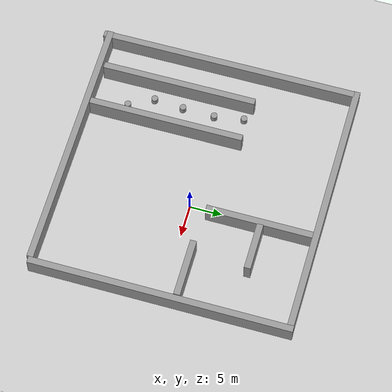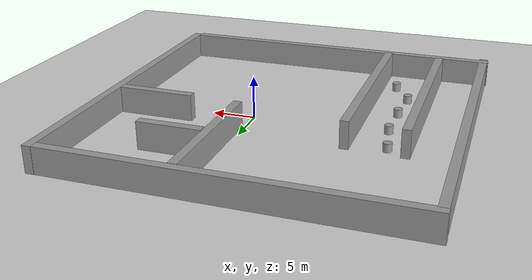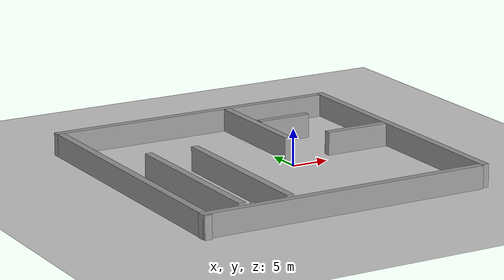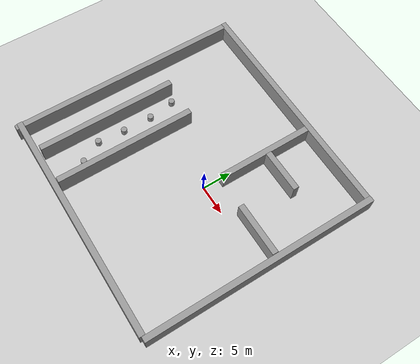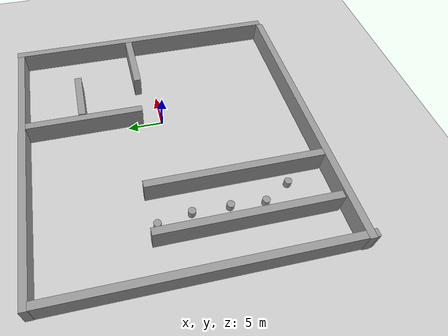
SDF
<sdf version="1.7">
 <world name="default">
  <light name="sun" type="directional">
   <pose>0 0 10 0 -0 0</pose>
   <diffuse>0.8 0.8 0.8 1</diffuse>
   <specular>0.2 0.2 0.2 1</specular>
   <attenuation>
    <range>1000</range>
    <constant>0.9</constant>
    <linear>0.01</linear>
    <quadratic>0.001</quadratic>
   </attenuation>
   <direction>-0.5 0.1 -0.9</direction>
   <spot><inner_angle>0</inner_angle><outer_angle>0</outer_angle><falloff>0</falloff></spot>
  </light>
  <model name="ground_plane">
   <static>1</static>
   <link name="link">
    <collision name="collision">
     <geometry><plane><normal>0 0 1</normal><size>100 100</size></plane></geometry>
     <surface>
      <contact><collide_bitmask>65535</collide_bitmask></contact>
      <friction><ode><mu>100</mu><mu2>50</mu2></ode></friction>
     </surface>
    </collision>
    <visual name="visual">
     <cast_shadows>0</cast_shadows>
     <geometry><plane><normal>0 0 1</normal><size>100 100</size></plane></geometry>
     <material>
      <script><uri>file://media/materials/scripts/gazebo.material</uri><name>Gazebo/Grey</name></script>
     </material>
    </visual>
   </link>
  </model>
  <gravity>0 0 -9.8</gravity>
  <magnetic_field>6e-06 2.3e-05 -4.2e-05</magnetic_field>
  <atmosphere type="adiabatic"/>
  <physics type="ode">
   <max_step_size>0.001</max_step_size>
   <real_time_factor>1</real_time_factor>
   <real_time_update_rate>1000</real_time_update_rate>
  </physics>
  <scene><ambient>0.4 0.4 0.4 1</ambient><background>0.7 0.7 0.7 1</background><shadows>1</shadows></scene>
  <audio><device>default</device></audio>
  <spherical_coordinates>
   <surface_model>EARTH_WGS84</surface_model>
   <latitude_deg>0</latitude_deg>
   <longitude_deg>0</longitude_deg>
   <elevation>0</elevation>
   <heading_deg>0</heading_deg>
  </spherical_coordinates>
  <model name="unit_box">
   <link name="link">
    <inertial>
     <mass>100</mass>
     <inertia><ixx>150</ixx><ixy>0</ixy><ixz>0</ixz><iyy>246</iyy><iyz>0</iyz><izz>14341.5</izz></inertia>
    </inertial>
    <visual name="visual">
     <geometry><box><size>1 40 5</size></box></geometry>
     <material>
      <script><name>Gazebo/Grey</name><uri>file://media/materials/scripts/gazebo.material</uri></script>
      <shader type="pixel"><normal_map>__default__</normal_map></shader>
      <ambient>0.3 0.3 0.3 1</ambient>
      <diffuse>0.7 0.7 0.7 1</diffuse>
      <specular>0.01 0.01 0.01 1</specular>
      <emissive>0 0 0 1</emissive>
     </material>
    </visual>
    <collision name="collision">
     <geometry><box><size>1 40 5</size></box></geometry>
     <surface>
      <friction>
       <ode><mu>1</mu><mu2>1</mu2><fdir1>0 0 0</fdir1><slip1>0</slip1><slip2>0</slip2></ode>
       <torsional>
        <coefficient>1</coefficient>
        <patch_radius>0</patch_radius>
        <surface_radius>0</surface_radius>
        <use_patch_radius>1</use_patch_radius>
        <ode><slip>0</slip></ode>
       </torsional>
      </friction>
      <bounce><restitution_coefficient>0</restitution_coefficient><threshold>1e+06</threshold></bounce>
      <contact>
       <collide_without_contact>0</collide_without_contact>
       <collide_without_contact_bitmask>1</collide_without_contact_bitmask>
       <collide_bitmask>1</collide_bitmask>
       <ode>
        <soft_cfm>0</soft_cfm>
        <soft_erp>0.2</soft_erp>
        <kp>1e+13</kp>
        <kd>1</kd>
        <max_vel>0.01</max_vel>
        <min_depth>0</min_depth>
       </ode>
       <bullet>
        <split_impulse>1</split_impulse>
        <split_impulse_penetration_threshold>-0.01</split_impulse_penetration_threshold>
        <soft_cfm>0</soft_cfm>
        <soft_erp>0.2</soft_erp>
        <kp>1e+13</kp>
        <kd>1</kd>
       </bullet>
      </contact>
     </surface>
    </collision>
   </link>
   <static>1</static>
   <pose>16.0416 0 0.499995 1e-05 -0 0</pose>
  </model>
  <model name="unit_box_clone">
   <link name="link">
    <inertial>
     <mass>100</mass>
     <inertia><ixx>150</ixx><ixy>0</ixy><ixz>0</ixz><iyy>246</iyy><iyz>0</iyz><izz>14341.5</izz></inertia>
    </inertial>
    <visual name="visual">
     <geometry><box><size>1 40 5</size></box></geometry>
     <material>
      <script><name>Gazebo/Grey</name><uri>file://media/materials/scripts/gazebo.material</uri></script>
      <shader type="pixel"><normal_map>__default__</normal_map></shader>
      <ambient>0.3 0.3 0.3 1</ambient>
      <diffuse>0.7 0.7 0.7 1</diffuse>
      <specular>0.01 0.01 0.01 1</specular>
      <emissive>0 0 0 1</emissive>
     </material>
    </visual>
    <collision name="collision">
     <geometry><box><size>1 40 5</size></box></geometry>
     <surface>
      <friction>
       <ode><mu>1</mu><mu2>1</mu2><fdir1>0 0 0</fdir1><slip1>0</slip1><slip2>0</slip2></ode>
       <torsional>
        <coefficient>1</coefficient>
        <patch_radius>0</patch_radius>
        <surface_radius>0</surface_radius>
        <use_patch_radius>1</use_patch_radius>
        <ode><slip>0</slip></ode>
       </torsional>
      </friction>
      <bounce><restitution_coefficient>0</restitution_coefficient><threshold>1e+06</threshold></bounce>
      <contact>
       <collide_without_contact>0</collide_without_contact>
       <collide_without_contact_bitmask>1</collide_without_contact_bitmask>
       <collide_bitmask>1</collide_bitmask>
       <ode>
        <soft_cfm>0</soft_cfm>
        <soft_erp>0.2</soft_erp>
        <kp>1e+13</kp>
        <kd>1</kd>
        <max_vel>0.01</max_vel>
        <min_depth>0</min_depth>
       </ode>
       <bullet>
        <split_impulse>1</split_impulse>
        <split_impulse_penetration_threshold>-0.01</split_impulse_penetration_threshold>
        <soft_cfm>0</soft_cfm>
        <soft_erp>0.2</soft_erp>
        <kp>1e+13</kp>
        <kd>1</kd>
       </bullet>
      </contact>
     </surface>
    </collision>
   </link>
   <static>1</static>
   <pose>-4.41591 19.5432 0.499995 0 -1e-05 1.56695</pose>
  </model>
  <model name="unit_box_clone_0">
   <link name="link">
    <inertial>
     <mass>100</mass>
     <inertia><ixx>150</ixx><ixy>0</ixy><ixz>0</ixz><iyy>246</iyy><iyz>0</iyz><izz>14341.5</izz></inertia>
    </inertial>
    <visual name="visual">
     <geometry><box><size>1 40 5</size></box></geometry>
     <material>
      <script><name>Gazebo/Grey</name><uri>file://media/materials/scripts/gazebo.material</uri></script>
      <shader type="pixel"><normal_map>__default__</normal_map></shader>
      <ambient>0.3 0.3 0.3 1</ambient>
      <diffuse>0.7 0.7 0.7 1</diffuse>
      <specular>0.01 0.01 0.01 1</specular>
      <emissive>0 0 0 1</emissive>
     </material>
    </visual>
    <collision name="collision">
     <geometry><box><size>1 40 5</size></box></geometry>
     <surface>
      <friction>
       <ode><mu>1</mu><mu2>1</mu2><fdir1>0 0 0</fdir1><slip1>0</slip1><slip2>0</slip2></ode>
       <torsional>
        <coefficient>1</coefficient>
        <patch_radius>0</patch_radius>
        <surface_radius>0</surface_radius>
        <use_patch_radius>1</use_patch_radius>
        <ode><slip>0</slip></ode>
       </torsional>
      </friction>
      <bounce><restitution_coefficient>0</restitution_coefficient><threshold>1e+06</threshold></bounce>
      <contact>
       <collide_without_contact>0</collide_without_contact>
       <collide_without_contact_bitmask>1</collide_without_contact_bitmask>
       <collide_bitmask>1</collide_bitmask>
       <ode>
        <soft_cfm>0</soft_cfm>
        <soft_erp>0.2</soft_erp>
        <kp>1e+13</kp>
        <kd>1</kd>
        <max_vel>0.01</max_vel>
        <min_depth>0</min_depth>
       </ode>
       <bullet>
        <split_impulse>1</split_impulse>
        <split_impulse_penetration_threshold>-0.01</split_impulse_penetration_threshold>
        <soft_cfm>0</soft_cfm>
        <soft_erp>0.2</soft_erp>
        <kp>1e+13</kp>
        <kd>1</kd>
       </bullet>
      </contact>
     </surface>
    </collision>
   </link>
   <static>1</static>
   <pose>-23.8839 -0.749278 0.499995 1e-05 -0 0</pose>
  </model>
  <model name="unit_box_clone_1">
   <link name="link">
    <inertial>
     <mass>100</mass>
     <inertia><ixx>150</ixx><ixy>0</ixy><ixz>0</ixz><iyy>246</iyy><iyz>0</iyz><izz>14341.5</izz></inertia>
    </inertial>
    <visual name="visual">
     <geometry><box><size>1 40 5</size></box></geometry>
     <material>
      <script><name>Gazebo/Grey</name><uri>file://media/materials/scripts/gazebo.material</uri></script>
      <shader type="pixel"><normal_map>__default__</normal_map></shader>
      <ambient>0.3 0.3 0.3 1</ambient>
      <diffuse>0.7 0.7 0.7 1</diffuse>
      <specular>0.01 0.01 0.01 1</specular>
      <emissive>0 0 0 1</emissive>
     </material>
    </visual>
    <collision name="collision">
     <geometry><box><size>1 40 5</size></box></geometry>
     <surface>
      <friction>
       <ode><mu>1</mu><mu2>1</mu2><fdir1>0 0 0</fdir1><slip1>0</slip1><slip2>0</slip2></ode>
       <torsional>
        <coefficient>1</coefficient>
        <patch_radius>0</patch_radius>
        <surface_radius>0</surface_radius>
        <use_patch_radius>1</use_patch_radius>
        <ode><slip>0</slip></ode>
       </torsional>
      </friction>
      <bounce><restitution_coefficient>0</restitution_coefficient><threshold>1e+06</threshold></bounce>
      <contact>
       <collide_without_contact>0</collide_without_contact>
       <collide_without_contact_bitmask>1</collide_without_contact_bitmask>
       <collide_bitmask>1</collide_bitmask>
       <ode>
        <soft_cfm>0</soft_cfm>
        <soft_erp>0.2</soft_erp>
        <kp>1e+13</kp>
        <kd>1</kd>
        <max_vel>0.01</max_vel>
        <min_depth>0</min_depth>
       </ode>
       <bullet>
        <split_impulse>1</split_impulse>
        <split_impulse_penetration_threshold>-0.01</split_impulse_penetration_threshold>
        <soft_cfm>0</soft_cfm>
        <soft_erp>0.2</soft_erp>
        <kp>1e+13</kp>
        <kd>1</kd>
       </bullet>
      </contact>
     </surface>
    </collision>
   </link>
   <static>1</static>
   <pose>-4.47248 -19.83 0.499995 0 1e-05 -1.5708</pose>
  </model>
  <model name="unit_box_0">
   <link name="link">
    <inertial>
     <mass>1</mass>
     <inertia>
      <ixx>0.166667</ixx>
      <ixy>0</ixy>
      <ixz>0</ixz>
      <iyy>0.166667</iyy>
      <iyz>0</iyz>
      <izz>0.166667</izz>
     </inertia>
    </inertial>
    <visual name="visual">
     <geometry><box><size>1 16.2921 5.03568</size></box></geometry>
     <material>
      <script><name>Gazebo/Grey</name><uri>file://media/materials/scripts/gazebo.material</uri></script>
      <shader type="pixel"/>
     </material>
    </visual>
    <collision name="collision">
     <geometry><box><size>1 16.2921 5.03568</size></box></geometry>
     <surface>
      <friction>
       <ode><mu>1</mu><mu2>1</mu2><fdir1>0 0 0</fdir1><slip1>0</slip1><slip2>0</slip2></ode>
       <torsional>
        <coefficient>1</coefficient>
        <patch_radius>0</patch_radius>
        <surface_radius>0</surface_radius>
        <use_patch_radius>1</use_patch_radius>
        <ode><slip>0</slip></ode>
       </torsional>
      </friction>
      <bounce><restitution_coefficient>0</restitution_coefficient><threshold>1e+06</threshold></bounce>
      <contact>
       <collide_without_contact>0</collide_without_contact>
       <collide_without_contact_bitmask>1</collide_without_contact_bitmask>
       <collide_bitmask>1</collide_bitmask>
       <ode>
        <soft_cfm>0</soft_cfm>
        <soft_erp>0.2</soft_erp>
        <kp>1e+13</kp>
        <kd>1</kd>
        <max_vel>0.01</max_vel>
        <min_depth>0</min_depth>
       </ode>
       <bullet>
        <split_impulse>1</split_impulse>
        <split_impulse_penetration_threshold>-0.01</split_impulse_penetration_threshold>
        <soft_cfm>0</soft_cfm>
        <soft_erp>0.2</soft_erp>
        <kp>1e+13</kp>
        <kd>1</kd>
       </bullet>
      </contact>
     </surface>
    </collision>
   </link>
   <static>1</static>
   <pose>0.898576 10.8776 0.5 0 -0 0</pose>
  </model>
  <model name="unit_box_1">
   <link name="link">
    <inertial>
     <mass>1</mass>
     <inertia>
      <ixx>0.166667</ixx>
      <ixy>0</ixy>
      <ixz>0</ixz>
      <iyy>0.166667</iyy>
      <iyz>0</iyz>
      <izz>0.166667</izz>
     </inertia>
    </inertial>
    <visual name="visual">
     <geometry><box><size>8.92306 1 5.09208</size></box></geometry>
     <material>
      <script><name>Gazebo/Grey</name><uri>file://media/materials/scripts/gazebo.material</uri></script>
      <shader type="pixel"/>
     </material>
    </visual>
    <collision name="collision">
     <geometry><box><size>8.92306 1 5.09208</size></box></geometry>
     <surface>
      <friction>
       <ode><mu>1</mu><mu2>1</mu2><fdir1>0 0 0</fdir1><slip1>0</slip1><slip2>0</slip2></ode>
       <torsional>
        <coefficient>1</coefficient>
        <patch_radius>0</patch_radius>
        <surface_radius>0</surface_radius>
        <use_patch_radius>1</use_patch_radius>
        <ode><slip>0</slip></ode>
       </torsional>
      </friction>
      <bounce><restitution_coefficient>0</restitution_coefficient><threshold>1e+06</threshold></bounce>
      <contact>
       <collide_without_contact>0</collide_without_contact>
       <collide_without_contact_bitmask>1</collide_without_contact_bitmask>
       <collide_bitmask>1</collide_bitmask>
       <ode>
        <soft_cfm>0</soft_cfm>
        <soft_erp>0.2</soft_erp>
        <kp>1e+13</kp>
        <kd>1</kd>
        <max_vel>0.01</max_vel>
        <min_depth>0</min_depth>
       </ode>
       <bullet>
        <split_impulse>1</split_impulse>
        <split_impulse_penetration_threshold>-0.01</split_impulse_penetration_threshold>
        <soft_cfm>0</soft_cfm>
        <soft_erp>0.2</soft_erp>
        <kp>1e+13</kp>
        <kd>1</kd>
       </bullet>
      </contact>
     </surface>
    </collision>
   </link>
   <static>1</static>
   <pose>11.0215 2.44873 0.5 0 -0 0</pose>
  </model>
  <model name="unit_box_2">
   <link name="link">
    <inertial>
     <mass>1</mass>
     <inertia>
      <ixx>0.166667</ixx>
      <ixy>0</ixy>
      <ixz>0</ixz>
      <iyy>0.166667</iyy>
      <iyz>0</iyz>
      <izz>0.166667</izz>
     </inertia>
    </inertial>
    <visual name="visual">
     <geometry><box><size>7.35031 1 5.33785</size></box></geometry>
     <material>
      <script><name>Gazebo/Grey</name><uri>file://media/materials/scripts/gazebo.material</uri></script>
      <shader type="pixel"/>
     </material>
    </visual>
    <collision name="collision">
     <geometry><box><size>7.35031 1 5.33785</size></box></geometry>
     <surface>
      <friction>
       <ode><mu>1</mu><mu2>1</mu2><fdir1>0 0 0</fdir1><slip1>0</slip1><slip2>0</slip2></ode>
       <torsional>
        <coefficient>1</coefficient>
        <patch_radius>0</patch_radius>
        <surface_radius>0</surface_radius>
        <use_patch_radius>1</use_patch_radius>
        <ode><slip>0</slip></ode>
       </torsional>
      </friction>
      <bounce><restitution_coefficient>0</restitution_coefficient><threshold>1e+06</threshold></bounce>
      <contact>
       <collide_without_contact>0</collide_without_contact>
       <collide_without_contact_bitmask>1</collide_without_contact_bitmask>
       <collide_bitmask>1</collide_bitmask>
       <ode>
        <soft_cfm>0</soft_cfm>
        <soft_erp>0.2</soft_erp>
        <kp>1e+13</kp>
        <kd>1</kd>
        <max_vel>0.01</max_vel>
        <min_depth>0</min_depth>
       </ode>
       <bullet>
        <split_impulse>1</split_impulse>
        <split_impulse_penetration_threshold>-0.01</split_impulse_penetration_threshold>
        <soft_cfm>0</soft_cfm>
        <soft_erp>0.2</soft_erp>
        <kp>1e+13</kp>
        <kd>1</kd>
       </bullet>
      </contact>
     </surface>
    </collision>
   </link>
   <static>1</static>
   <pose>5.04948 11.1664 0.500383 0 -0 0</pose>
  </model>
  <model name="unit_box_3">
   <link name="link">
    <inertial>
     <mass>1</mass>
     <inertia>
      <ixx>0.166667</ixx>
      <ixy>0</ixy>
      <ixz>0</ixz>
      <iyy>0.166667</iyy>
      <iyz>0</iyz>
      <izz>0.166667</izz>
     </inertia>
    </inertial>
    <visual name="visual">
     <geometry><box><size>1 24.0462 5.35501</size></box></geometry>
     <material>
      <script><name>Gazebo/Grey</name><uri>file://media/materials/scripts/gazebo.material</uri></script>
      <shader type="pixel"/>
     </material>
    </visual>
    <collision name="collision">
     <geometry><box><size>1 24.0462 5.35501</size></box></geometry>
     <surface>
      <friction>
       <ode><mu>1</mu><mu2>1</mu2><fdir1>0 0 0</fdir1><slip1>0</slip1><slip2>0</slip2></ode>
       <torsional>
        <coefficient>1</coefficient>
        <patch_radius>0</patch_radius>
        <surface_radius>0</surface_radius>
        <use_patch_radius>1</use_patch_radius>
        <ode><slip>0</slip></ode>
       </torsional>
      </friction>
      <bounce><restitution_coefficient>0</restitution_coefficient><threshold>1e+06</threshold></bounce>
      <contact>
       <collide_without_contact>0</collide_without_contact>
       <collide_without_contact_bitmask>1</collide_without_contact_bitmask>
       <collide_bitmask>1</collide_bitmask>
       <ode>
        <soft_cfm>0</soft_cfm>
        <soft_erp>0.2</soft_erp>
        <kp>1e+13</kp>
        <kd>1</kd>
        <max_vel>0.01</max_vel>
        <min_depth>0</min_depth>
       </ode>
       <bullet>
        <split_impulse>1</split_impulse>
        <split_impulse_penetration_threshold>-0.01</split_impulse_penetration_threshold>
        <soft_cfm>0</soft_cfm>
        <soft_erp>0.2</soft_erp>
        <kp>1e+13</kp>
        <kd>1</kd>
       </bullet>
      </contact>
     </surface>
    </collision>
   </link>
   <static>1</static>
   <pose>-11.8201 -7.19215 0.5 0 -0 0</pose>
  </model>
  <model name="unit_box_3_clone">
   <link name="link">
    <inertial>
     <mass>1</mass>
     <inertia>
      <ixx>0.166667</ixx>
      <ixy>0</ixy>
      <ixz>0</ixz>
      <iyy>0.166667</iyy>
      <iyz>0</iyz>
      <izz>0.166667</izz>
     </inertia>
    </inertial>
    <visual name="visual">
     <geometry><box><size>1 24.0462 5.35501</size></box></geometry>
     <material>
      <script><name>Gazebo/Grey</name><uri>file://media/materials/scripts/gazebo.material</uri></script>
      <shader type="pixel"/>
     </material>
    </visual>
    <collision name="collision">
     <geometry><box><size>1 24.0462 5.35501</size></box></geometry>
     <surface>
      <friction>
       <ode><mu>1</mu><mu2>1</mu2><fdir1>0 0 0</fdir1><slip1>0</slip1><slip2>0</slip2></ode>
       <torsional>
        <coefficient>1</coefficient>
        <patch_radius>0</patch_radius>
        <surface_radius>0</surface_radius>
        <use_patch_radius>1</use_patch_radius>
        <ode><slip>0</slip></ode>
       </torsional>
      </friction>
      <bounce><restitution_coefficient>0</restitution_coefficient><threshold>1e+06</threshold></bounce>
      <contact>
       <collide_without_contact>0</collide_without_contact>
       <collide_without_contact_bitmask>1</collide_without_contact_bitmask>
       <collide_bitmask>1</collide_bitmask>
       <ode>
        <soft_cfm>0</soft_cfm>
        <soft_erp>0.2</soft_erp>
        <kp>1e+13</kp>
        <kd>1</kd>
        <max_vel>0.01</max_vel>
        <min_depth>0</min_depth>
       </ode>
       <bullet>
        <split_impulse>1</split_impulse>
        <split_impulse_penetration_threshold>-0.01</split_impulse_penetration_threshold>
        <soft_cfm>0</soft_cfm>
        <soft_erp>0.2</soft_erp>
        <kp>1e+13</kp>
        <kd>1</kd>
       </bullet>
      </contact>
     </surface>
    </collision>
   </link>
   <static>1</static>
   <pose>-18.3814 -6.98617 0.5 0 -0 0</pose>
  </model>
  <model name="unit_cylinder">
   <link name="link">
    <inertial>
     <mass>1</mass>
     <inertia><ixx>0.145833</ixx><ixy>0</ixy><ixz>0</ixz><iyy>0.145833</iyy><iyz>0</iyz><izz>0.125</izz></inertia>
    </inertial>
    <visual name="visual">
     <geometry><cylinder><radius>0.5</radius><length>1</length></cylinder></geometry>
     <material>
      <script><name>Gazebo/Grey</name><uri>file://media/materials/scripts/gazebo.material</uri></script>
      <shader type="pixel"/>
     </material>
    </visual>
    <collision name="collision">
     <geometry><cylinder><radius>0.5</radius><length>1</length></cylinder></geometry>
     <surface>
      <friction>
       <ode><mu>1</mu><mu2>1</mu2><fdir1>0 0 0</fdir1><slip1>0</slip1><slip2>0</slip2></ode>
       <torsional>
        <coefficient>1</coefficient>
        <patch_radius>0</patch_radius>
        <surface_radius>0</surface_radius>
        <use_patch_radius>1</use_patch_radius>
        <ode><slip>0</slip></ode>
       </torsional>
      </friction>
      <bounce><restitution_coefficient>0</restitution_coefficient><threshold>1e+06</threshold></bounce>
      <contact>
       <collide_without_contact>0</collide_without_contact>
       <collide_without_contact_bitmask>1</collide_without_contact_bitmask>
       <collide_bitmask>1</collide_bitmask>
       <ode>
        <soft_cfm>0</soft_cfm>
        <soft_erp>0.2</soft_erp>
        <kp>1e+13</kp>
        <kd>1</kd>
        <max_vel>0.01</max_vel>
        <min_depth>0</min_depth>
       </ode>
       <bullet>
        <split_impulse>1</split_impulse>
        <split_impulse_penetration_threshold>-0.01</split_impulse_penetration_threshold>
        <soft_cfm>0</soft_cfm>
        <soft_erp>0.2</soft_erp>
        <kp>1e+13</kp>
        <kd>1</kd>
       </bullet>
      </contact>
     </surface>
    </collision>
   </link>
   <static>1</static>
   <pose>-15.6443 -5.61509 0.5 0 -0 0</pose>
  </model>
  <model name="unit_cylinder_clone">
   <link name="link">
    <inertial>
     <mass>1</mass>
     <inertia><ixx>0.145833</ixx><ixy>0</ixy><ixz>0</ixz><iyy>0.145833</iyy><iyz>0</iyz><izz>0.125</izz></inertia>
    </inertial>
    <visual name="visual">
     <geometry><cylinder><radius>0.5</radius><length>1</length></cylinder></geometry>
     <material>
      <script><name>Gazebo/Grey</name><uri>file://media/materials/scripts/gazebo.material</uri></script>
      <shader type="pixel"/>
     </material>
    </visual>
    <collision name="collision">
     <geometry><cylinder><radius>0.5</radius><length>1</length></cylinder></geometry>
     <surface>
      <friction>
       <ode><mu>1</mu><mu2>1</mu2><fdir1>0 0 0</fdir1><slip1>0</slip1><slip2>0</slip2></ode>
       <torsional>
        <coefficient>1</coefficient>
        <patch_radius>0</patch_radius>
        <surface_radius>0</surface_radius>
        <use_patch_radius>1</use_patch_radius>
        <ode><slip>0</slip></ode>
       </torsional>
      </friction>
      <bounce><restitution_coefficient>0</restitution_coefficient><threshold>1e+06</threshold></bounce>
      <contact>
       <collide_without_contact>0</collide_without_contact>
       <collide_without_contact_bitmask>1</collide_without_contact_bitmask>
       <collide_bitmask>1</collide_bitmask>
       <ode>
        <soft_cfm>0</soft_cfm>
        <soft_erp>0.2</soft_erp>
        <kp>1e+13</kp>
        <kd>1</kd>
        <max_vel>0.01</max_vel>
        <min_depth>0</min_depth>
       </ode>
       <bullet>
        <split_impulse>1</split_impulse>
        <split_impulse_penetration_threshold>-0.01</split_impulse_penetration_threshold>
        <soft_cfm>0</soft_cfm>
        <soft_erp>0.2</soft_erp>
        <kp>1e+13</kp>
        <kd>1</kd>
       </bullet>
      </contact>
     </surface>
    </collision>
   </link>
   <static>1</static>
   <pose>-13.929 -13.9416 0.527303 0 -0 0</pose>
  </model>
  <model name="unit_cylinder_clone_0">
   <link name="link">
    <inertial>
     <mass>1</mass>
     <inertia><ixx>0.145833</ixx><ixy>0</ixy><ixz>0</ixz><iyy>0.145833</iyy><iyz>0</iyz><izz>0.125</izz></inertia>
    </inertial>
    <visual name="visual">
     <geometry><cylinder><radius>0.5</radius><length>1</length></cylinder></geometry>
     <material>
      <script><name>Gazebo/Grey</name><uri>file://media/materials/scripts/gazebo.material</uri></script>
      <shader type="pixel"/>
     </material>
    </visual>
    <collision name="collision">
     <geometry><cylinder><radius>0.5</radius><length>1</length></cylinder></geometry>
     <surface>
      <friction>
       <ode><mu>1</mu><mu2>1</mu2><fdir1>0 0 0</fdir1><slip1>0</slip1><slip2>0</slip2></ode>
       <torsional>
        <coefficient>1</coefficient>
        <patch_radius>0</patch_radius>
        <surface_radius>0</surface_radius>
        <use_patch_radius>1</use_patch_radius>
        <ode><slip>0</slip></ode>
       </torsional>
      </friction>
      <bounce><restitution_coefficient>0</restitution_coefficient><threshold>1e+06</threshold></bounce>
      <contact>
       <collide_without_contact>0</collide_without_contact>
       <collide_without_contact_bitmask>1</collide_without_contact_bitmask>
       <collide_bitmask>1</collide_bitmask>
       <ode>
        <soft_cfm>0</soft_cfm>
        <soft_erp>0.2</soft_erp>
        <kp>1e+13</kp>
        <kd>1</kd>
        <max_vel>0.01</max_vel>
        <min_depth>0</min_depth>
       </ode>
       <bullet>
        <split_impulse>1</split_impulse>
        <split_impulse_penetration_threshold>-0.01</split_impulse_penetration_threshold>
        <soft_cfm>0</soft_cfm>
        <soft_erp>0.2</soft_erp>
        <kp>1e+13</kp>
        <kd>1</kd>
       </bullet>
      </contact>
     </surface>
    </collision>
   </link>
   <static>1</static>
   <pose>-15.9628 -10.2324 0.5 0 -0 0</pose>
  </model>
  <model name="unit_cylinder_clone_1">
   <link name="link">
    <inertial>
     <mass>1</mass>
     <inertia><ixx>0.145833</ixx><ixy>0</ixy><ixz>0</ixz><iyy>0.145833</iyy><iyz>0</iyz><izz>0.125</izz></inertia>
    </inertial>
    <visual name="visual">
     <geometry><cylinder><radius>0.5</radius><length>1</length></cylinder></geometry>
     <material>
      <script><name>Gazebo/Grey</name><uri>file://media/materials/scripts/gazebo.material</uri></script>
      <shader type="pixel"/>
     </material>
    </visual>
    <collision name="collision">
     <geometry><cylinder><radius>0.5</radius><length>1</length></cylinder></geometry>
     <surface>
      <friction>
       <ode><mu>1</mu><mu2>1</mu2><fdir1>0 0 0</fdir1><slip1>0</slip1><slip2>0</slip2></ode>
       <torsional>
        <coefficient>1</coefficient>
        <patch_radius>0</patch_radius>
        <surface_radius>0</surface_radius>
        <use_patch_radius>1</use_patch_radius>
        <ode><slip>0</slip></ode>
       </torsional>
      </friction>
      <bounce><restitution_coefficient>0</restitution_coefficient><threshold>1e+06</threshold></bounce>
      <contact>
       <collide_without_contact>0</collide_without_contact>
       <collide_without_contact_bitmask>1</collide_without_contact_bitmask>
       <collide_bitmask>1</collide_bitmask>
       <ode>
        <soft_cfm>0</soft_cfm>
        <soft_erp>0.2</soft_erp>
        <kp>1e+13</kp>
        <kd>1</kd>
        <max_vel>0.01</max_vel>
        <min_depth>0</min_depth>
       </ode>
       <bullet>
        <split_impulse>1</split_impulse>
        <split_impulse_penetration_threshold>-0.01</split_impulse_penetration_threshold>
        <soft_cfm>0</soft_cfm>
        <soft_erp>0.2</soft_erp>
        <kp>1e+13</kp>
        <kd>1</kd>
       </bullet>
      </contact>
     </surface>
    </collision>
   </link>
   <static>1</static>
   <pose>-15.5558 -0.621559 0.5 0 -0 0</pose>
  </model>
  <model name="unit_cylinder_clone_2">
   <link name="link">
    <inertial>
     <mass>1</mass>
     <inertia><ixx>0.145833</ixx><ixy>0</ixy><ixz>0</ixz><iyy>0.145833</iyy><iyz>0</iyz><izz>0.125</izz></inertia>
    </inertial>
    <visual name="visual">
     <geometry><cylinder><radius>0.5</radius><length>1</length></cylinder></geometry>
     <material>
      <script><name>Gazebo/Grey</name><uri>file://media/materials/scripts/gazebo.material</uri></script>
      <shader type="pixel"/>
     </material>
    </visual>
    <collision name="collision">
     <geometry><cylinder><radius>0.5</radius><length>1</length></cylinder></geometry>
     <surface>
      <friction>
       <ode><mu>1</mu><mu2>1</mu2><fdir1>0 0 0</fdir1><slip1>0</slip1><slip2>0</slip2></ode>
       <torsional>
        <coefficient>1</coefficient>
        <patch_radius>0</patch_radius>
        <surface_radius>0</surface_radius>
        <use_patch_radius>1</use_patch_radius>
        <ode><slip>0</slip></ode>
       </torsional>
      </friction>
      <bounce><restitution_coefficient>0</restitution_coefficient><threshold>1e+06</threshold></bounce>
      <contact>
       <collide_without_contact>0</collide_without_contact>
       <collide_without_contact_bitmask>1</collide_without_contact_bitmask>
       <collide_bitmask>1</collide_bitmask>
       <ode>
        <soft_cfm>0</soft_cfm>
        <soft_erp>0.2</soft_erp>
        <kp>1e+13</kp>
        <kd>1</kd>
        <max_vel>0.01</max_vel>
        <min_depth>0</min_depth>
       </ode>
       <bullet>
        <split_impulse>1</split_impulse>
        <split_impulse_penetration_threshold>-0.01</split_impulse_penetration_threshold>
        <soft_cfm>0</soft_cfm>
        <soft_erp>0.2</soft_erp>
        <kp>1e+13</kp>
        <kd>1</kd>
       </bullet>
      </contact>
     </surface>
    </collision>
   </link>
   <static>1</static>
   <pose>-16.311 3.94063 0.5 0 -0 0</pose>
  </model>
 </world>
</sdf>
